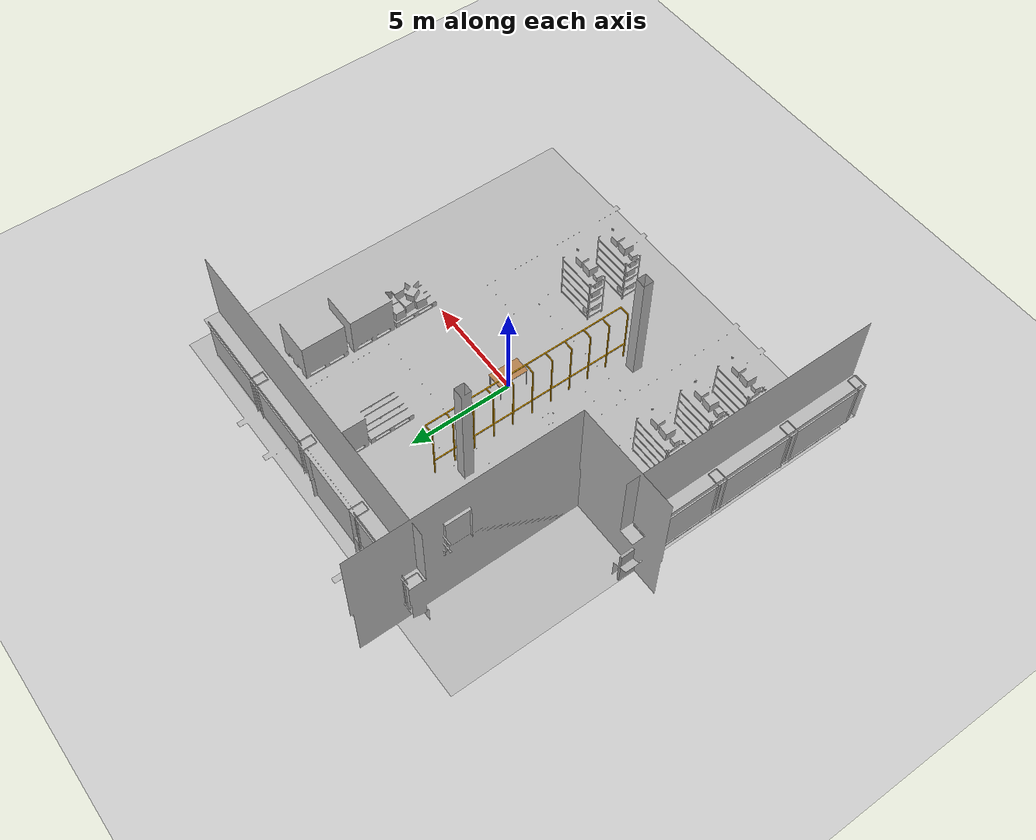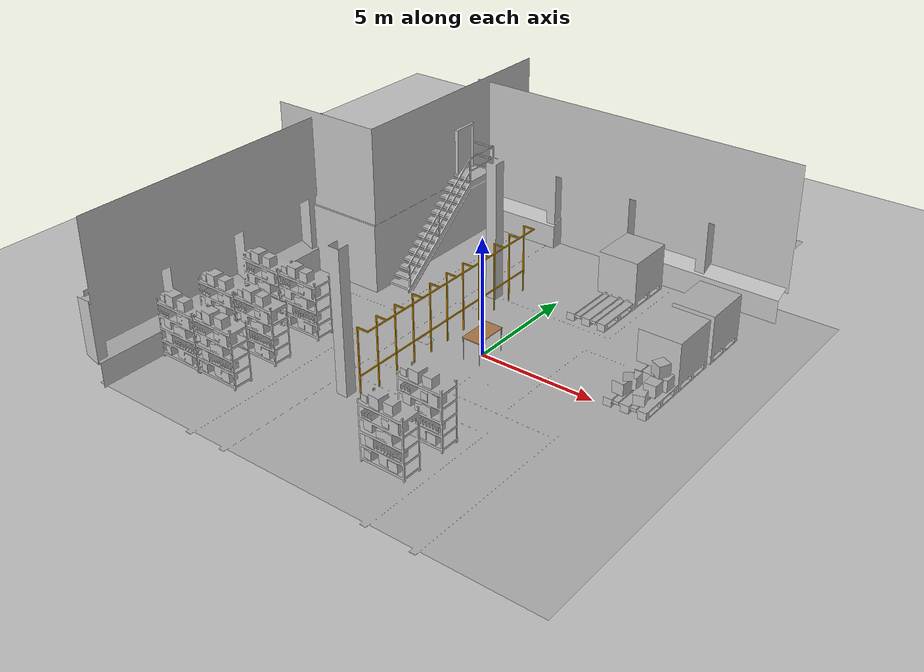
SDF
<?xml version="1.0" ?>
<sdf version="1.6">
  <world name="factory">
    <include>
      <uri>model://ground_plane</uri>
    </include>

    <include>
      <uri>model://sun</uri>
    </include>

    <include>
      <uri>model://workcell</uri>
      <name>workcell</name>
      <pose>0.0 0 -0.0 0 0 -1.5707</pose>
    </include>

    <include>
      <uri>model://table</uri>
      <name>table</name>
      <pose>0.0 0 -0.0 0 0 -1.5707</pose>
    </include>

    <model name="cam">
      <static>true</static>
      <pose>0 0 2.0 0 1.5707 0</pose>
      <link name="cam_link">
        <inertial><mass>1.0</mass></inertial>
        <sensor name="camera" type="camera">
          <always_on>true</always_on>
          <update_rate>30</update_rate>
          <visualize>true</visualize>
          <camera>
            <horizontal_fov>1.047</horizontal_fov>
            <image>
              <width>640</width>
              <height>480</height>
              <format>R8G8B8</format>
            </image>
            <clip><near>0.1</near><far>100</far></clip>
          </camera>
          <plugin name="gazebo_ros_camera" filename="libgazebo_ros_camera.so">
            <frame_name>camera_link</frame_name>
            <camera_name>camera</camera_name>
            <image_topic_name>image_raw</image_topic_name>
          </plugin>
        </sensor>
      </link>
    </model>

  </world>
</sdf>

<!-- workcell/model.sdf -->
<sdf version="1.6">
  <model name="workcell">
    <static>true</static>
    <link name="link">
      <visual name="visual">
        <geometry>
          <mesh>
            <uri>model://workcell/meshes/mesh.dae</uri>
          </mesh>
        </geometry>
      </visual>

      <collision name="floor">
        <pose>0 0 -0.1 0 0 0</pose>
        <geometry>
          <box>
            <size>20.1026 20.1026 0.2</size>
          </box>
        </geometry>

          <surface>
          <contact>
            <ode>
              <max_vel>0.0</max_vel>
              <min_depth>0.001</min_depth>
            </ode>
          </contact>
          </surface>
      </collision>

      <collision name="wall1">
        <pose>4.13686 -10.02116 3.48855 0 0 0</pose>
        <geometry>
          <box>
            <size>12.07683 0.72902 6.97771</size>
          </box>
        </geometry>
      </collision>

      <collision name="wall2">
        <pose>-6.58151 -8.924 3.48855 0 0 0</pose>
        <geometry>
          <box>
            <size>10.59206 5.00198 6.97771</size>
          </box>
        </geometry>
      </collision>

      <collision name="wall3">
        <pose>-9.25721 0.6135 3.48855 0 0 0</pose>
        <geometry>
          <box>
            <size>0.72902 15.29079 6.97771</size>
          </box>
        </geometry>
      </collision>

      <collision name="rack1">
        <pose>7.35056 1.74430 1.41643054 0 0 0</pose>
        <geometry>
          <box>
            <size>0.84444041 1.95580823 2.83286108</size>
          </box>
        </geometry>
      </collision>

      <collision name="rack2">
        <pose>5.36795 1.74430 1.41643054 0 0 0</pose>
        <geometry>
          <box>
            <size>0.84444041 1.95580823 2.83286108</size>
          </box>
        </geometry>
      </collision>

      <collision name="rack3">
        <pose>7.00142 -7.64670 1.41643054 0 0 0</pose>
        <geometry>
          <box>
            <size>0.84444041 3.91161646 2.83286108</size>
          </box>
        </geometry>
      </collision>

      <collision name="rack4">
        <pose>4.97338 -7.64670 1.41643054 0 0 0</pose>
        <geometry>
          <box>
            <size>0.84444041 3.91161646 2.83286108</size>
          </box>
        </geometry>
      </collision>

      <collision name="rack5">
        <pose>2.66949 -7.64670 1.41643054 0 0 0</pose>
        <geometry>
          <box>
            <size>0.84444041 3.91161646 2.83286108</size>
          </box>
        </geometry>
      </collision>

      <collision name="large_pallet1">
        <pose>-3.33609 6.31883 1.04257 0 0 0</pose>
        <geometry>
          <box>
            <size>2.14726 1.79349 2.08514</size>
          </box>
        </geometry>
      </collision>

      <collision name="large_pallet2">
        <pose>-5.74492 6.31883 1.04257 0 0 0</pose>
        <geometry>
          <box>
            <size>2.14726 1.79349 2.08514</size>
          </box>
        </geometry>
      </collision>

      <collision name="large_pallet3">
        <pose>-7.55868 1.91644 1.04257 0 0 0</pose>
        <geometry>
          <box>
            <size>2.14726 1.79432 2.08514</size>
          </box>
        </geometry>
      </collision>

      <collision name="empty_pallet1">
        <pose>-5.29667 1.91644 0.1636 0 0 0</pose>
        <geometry>
          <box>
            <size>2.14726 1.79349 0.32720</size>
          </box>
        </geometry>
      </collision>

      <collision name="box_pallet1">
        <pose>-1.09806 6.31883 0.61958 0 0 0</pose>
        <geometry>
          <box>
            <size>2.14726 1.79349 1.23916</size>
          </box>
        </geometry>
      </collision>

      <collision name="pole1">
        <pose>5.02174 -2.39478 3.022075 0 0 0</pose>
        <geometry>
          <box>
            <size>0.49161 0.49161 6.04415</size>
          </box>
        </geometry>
      </collision>

      <collision name="pole2">
        <pose>0.47071 -2.39478 3.022075 0 0 0</pose>
        <geometry>
          <box>
            <size>0.49161 0.49161 6.04415</size>
          </box>
        </geometry>
      </collision>

      <collision name="pole3">
        <pose>-3.93786 -2.39478 3.022075 0 0 0</pose>
        <geometry>
          <box>
            <size>0.49161 0.49161 6.04415</size>
          </box>
        </geometry>
      </collision>
      <collision name="control_panel">
        <pose>2.07015 1.16224 0.561315 0 0 0</pose>
        <geometry>
          <box>
            <size>0.86733 0.6001 1.12263</size>
          </box>
        </geometry>
      </collision>

      <visual name="conveyor_frame_1">
        <pose>0 -1.21 3 0 0 0</pose>
        <geometry>
          <box>
            <size>10.0 0.05 0.05</size>
          </box>
        </geometry>
        <material>
          <ambient>0.725490196 0.517647059 0 1</ambient>
          <diffuse>0.725490196 0.517647059 0 1</diffuse>
        </material>
      </visual>
      <collision name="conveyor_frame_1_collision">
        <pose>0 -1.21 3 0 0 0</pose>
        <geometry>
          <box>
            <size>10.0 0.05 0.05</size>
          </box>
        </geometry>
      </collision>

      <visual name="conveyor_frame_2">
        <pose>0 -1.7 .95 0 0 0</pose>
        <geometry>
          <box>
            <size>10.0 0.05 0.05</size>
          </box>
        </geometry>
        <material>
          <ambient>0.725490196 0.517647059 0 1</ambient>
          <diffuse>0.725490196 0.517647059 0 1</diffuse>
        </material>
      </visual>
      <collision name="conveyor_frame_2_collision">
        <pose>0 -1.7 .95 0 0 0</pose>
        <geometry>
          <box>
            <size>10.0 0.05 0.05</size>
          </box>
        </geometry>
      </collision>

      <visual name="conveyor_frame_3">
        <pose>5 -1.7 1.5 0 0 0</pose>
        <geometry>
          <box>
            <size>0.05 0.05 3.0</size>
          </box>
        </geometry>
        <material>
          <ambient>0.725490196 0.517647059 0 1</ambient>
          <diffuse>0.725490196 0.517647059 0 1</diffuse>
        </material>
      </visual>
      <collision name="conveyor_frame_3_collision">
        <pose>5 -1.7 1.5 0 0 0</pose>
        <geometry>
          <box>
            <size>0.05 0.05 3.0</size>
          </box>
        </geometry>
      </collision>
      <visual name="conveyor_frame_4">
        <pose>5 -1.455 3.0 0 0 0</pose>
        <geometry>
          <box>
            <size>0.05 0.54 .05</size>
          </box>
        </geometry>
        <material>
          <ambient>0.725490196 0.517647059 0 1</ambient>
          <diffuse>0.725490196 0.517647059 0 1</diffuse>
        </material>
      </visual>
      <collision name="conveyor_frame_3_collision">
        <pose>5 -1.455 3.0 0 0 0</pose>
        <geometry>
          <box>
            <size>0.05 0.54 .05</size>
          </box>
        </geometry>
      </collision>

      <visual name="conveyor_frame_5">
        <pose>4 -1.7 1.5 0 0 0</pose>
        <geometry>
          <box>
            <size>0.05 0.05 3.0</size>
          </box>
        </geometry>
        <material>
          <ambient>0.725490196 0.517647059 0 1</ambient>
          <diffuse>0.725490196 0.517647059 0 1</diffuse>
        </material>
      </visual>
      <collision name="conveyor_frame_5_collision">
        <pose>4 -1.7 1.5 0 0 0</pose>
        <geometry>
          <box>
            <size>0.05 0.05 3.0</size>
          </box>
        </geometry>
      </collision>
      <visual name="conveyor_frame_6">
        <pose>4 -1.455 3.0 0 0 0</pose>
        <geometry>
          <box>
            <size>0.05 0.54 .05</size>
          </box>
        </geometry>
        <material>
          <ambient>0.725490196 0.517647059 0 1</ambient>
          <diffuse>0.725490196 0.517647059 0 1</diffuse>
        </material>
      </visual>
      <collision name="conveyor_frame_6_collision">
        <pose>4 -1.455 3.0 0 0 0</pose>
        <geometry>
          <box>
            <size>0.05 0.54 .05</size>
          </box>
        </geometry>
      </collision>

      <visual name="conveyor_frame_7">
        <pose>3 -1.7 1.5 0 0 0</pose>
        <geometry>
          <box>
            <size>0.05 0.05 3.0</size>
          </box>
        </geometry>
        <material>
          <ambient>0.725490196 0.517647059 0 1</ambient>
          <diffuse>0.725490196 0.517647059 0 1</diffuse>
        </material>
      </visual>
      <collision name="conveyor_frame_7_collision">
        <pose>3 -1.7 1.5 0 0 0</pose>
        <geometry>
          <box>
            <size>0.05 0.05 3.0</size>
          </box>
        </geometry>
      </collision>
      <visual name="conveyor_frame_8">
        <pose>3 -1.455 3.0 0 0 0</pose>
        <geometry>
          <box>
            <size>0.05 0.54 .05</size>
          </box>
        </geometry>
        <material>
          <ambient>0.725490196 0.517647059 0 1</ambient>
          <diffuse>0.725490196 0.517647059 0 1</diffuse>
        </material>
      </visual>
      <collision name="conveyor_frame_8_collision">
        <pose>3 -1.455 3.0 0 0 0</pose>
        <geometry>
          <box>
            <size>0.05 0.54 .05</size>
          </box>
        </geometry>
      </collision>

      <visual name="conveyor_frame_9">
        <pose>2 -1.7 1.5 0 0 0</pose>
        <geometry>
          <box>
            <size>0.05 0.05 3.0</size>
          </box>
        </geometry>
        <material>
          <ambient>0.725490196 0.517647059 0 1</ambient>
          <diffuse>0.725490196 0.517647059 0 1</diffuse>
        </material>
      </visual>
      <collision name="conveyor_frame_9_collision">
        <pose>2 -1.7 1.5 0 0 0</pose>
        <geometry>
          <box>
            <size>0.05 0.05 3.0</size>
          </box>
        </geometry>
      </collision>
      <visual name="conveyor_frame_10">
        <pose>2 -1.455 3.0 0 0 0</pose>
        <geometry>
          <box>
            <size>0.05 0.54 .05</size>
          </box>
        </geometry>
        <material>
          <ambient>0.725490196 0.517647059 0 1</ambient>
          <diffuse>0.725490196 0.517647059 0 1</diffuse>
        </material>
      </visual>
      <collision name="conveyor_frame_10_collision">
        <pose>2 -1.455 3.0 0 0 0</pose>
        <geometry>
          <box>
            <size>0.05 0.54 .05</size>
          </box>
        </geometry>
      </collision>

      <visual name="conveyor_frame_11">
        <pose>1 -1.7 1.5 0 0 0</pose>
        <geometry>
          <box>
            <size>0.05 0.05 3.0</size>
          </box>
        </geometry>
        <material>
          <ambient>0.725490196 0.517647059 0 1</ambient>
          <diffuse>0.725490196 0.517647059 0 1</diffuse>
        </material>
      </visual>
      <collision name="conveyor_frame_11_collision">
        <pose>1 -1.7 1.5 0 0 0</pose>
        <geometry>
          <box>
            <size>0.05 0.05 3.0</size>
          </box>
        </geometry>
      </collision>
      <visual name="conveyor_frame_12">
        <pose>1 -1.455 3.0 0 0 0</pose>
        <geometry>
          <box>
            <size>0.05 0.54 .05</size>
          </box>
        </geometry>
        <material>
          <ambient>0.725490196 0.517647059 0 1</ambient>
          <diffuse>0.725490196 0.517647059 0 1</diffuse>
        </material>
      </visual>
      <collision name="conveyor_frame_12_collision">
        <pose>1 -1.455 3.0 0 0 0</pose>
        <geometry>
          <box>
            <size>0.05 0.54 .05</size>
          </box>
        </geometry>
      </collision>

      <visual name="conveyor_frame_13">
        <pose>0 -1.7 1.5 0 0 0</pose>
        <geometry>
          <box>
            <size>0.05 0.05 3.0</size>
          </box>
        </geometry>
        <material>
          <ambient>0.725490196 0.517647059 0 1</ambient>
          <diffuse>0.725490196 0.517647059 0 1</diffuse>
        </material>
      </visual>
      <collision name="conveyor_frame_13_collision">
        <pose>0 -1.7 1.5 0 0 0</pose>
        <geometry>
          <box>
            <size>0.05 0.05 3.0</size>
          </box>
        </geometry>
      </collision>
      <visual name="conveyor_frame_14">
        <pose>0 -1.455 3.0 0 0 0</pose>
        <geometry>
          <box>
            <size>0.05 0.54 .05</size>
          </box>
        </geometry>
        <material>
          <ambient>0.725490196 0.517647059 0 1</ambient>
          <diffuse>0.725490196 0.517647059 0 1</diffuse>
        </material>
      </visual>
      <collision name="conveyor_frame_14_collision">
        <pose>0 -1.455 3.0 0 0 0</pose>
        <geometry>
          <box>
            <size>0.05 0.54 .05</size>
          </box>
        </geometry>
      </collision>

      <visual name="conveyor_frame_15">
        <pose>-1 -1.7 1.5 0 0 0</pose>
        <geometry>
          <box>
            <size>0.05 0.05 3.0</size>
          </box>
        </geometry>
        <material>
          <ambient>0.725490196 0.517647059 0 1</ambient>
          <diffuse>0.725490196 0.517647059 0 1</diffuse>
        </material>
      </visual>
      <collision name="conveyor_frame_15_collision">
        <pose>-1 -1.7 1.5 0 0 0</pose>
        <geometry>
          <box>
            <size>0.05 0.05 3.0</size>
          </box>
        </geometry>
      </collision>
      <visual name="conveyor_frame_16">
        <pose>-1 -1.455 3.0 0 0 0</pose>
        <geometry>
          <box>
            <size>0.05 0.54 .05</size>
          </box>
        </geometry>
        <material>
          <ambient>0.725490196 0.517647059 0 1</ambient>
          <diffuse>0.725490196 0.517647059 0 1</diffuse>
        </material>
      </visual>
      <collision name="conveyor_frame_16_collision">
        <pose>-1 -1.455 3.0 0 0 0</pose>
        <geometry>
          <box>
            <size>0.05 0.54 .05</size>
          </box>
        </geometry>
      </collision>

      <visual name="conveyor_frame_17">
        <pose>-2 -1.7 1.5 0 0 0</pose>
        <geometry>
          <box>
            <size>0.05 0.05 3.0</size>
          </box>
        </geometry>
        <material>
          <ambient>0.725490196 0.517647059 0 1</ambient>
          <diffuse>0.725490196 0.517647059 0 1</diffuse>
        </material>
      </visual>
      <collision name="conveyor_frame_17_collision">
        <pose>-2 -1.7 1.5 0 0 0</pose>
        <geometry>
          <box>
            <size>0.05 0.05 3.0</size>
          </box>
        </geometry>
      </collision>
      <visual name="conveyor_frame_18">
        <pose>-2 -1.455 3.0 0 0 0</pose>
        <geometry>
          <box>
            <size>0.05 0.54 .05</size>
          </box>
        </geometry>
        <material>
          <ambient>0.725490196 0.517647059 0 1</ambient>
          <diffuse>0.725490196 0.517647059 0 1</diffuse>
        </material>
      </visual>
      <collision name="conveyor_frame_18_collision">
        <pose>-2 -1.455 3.0 0 0 0</pose>
        <geometry>
          <box>
            <size>0.05 0.54 .05</size>
          </box>
        </geometry>
      </collision>

      <visual name="conveyor_frame_19">
        <pose>-3 -1.7 1.5 0 0 0</pose>
        <geometry>
          <box>
            <size>0.05 0.05 3.0</size>
          </box>
        </geometry>
        <material>
          <ambient>0.725490196 0.517647059 0 1</ambient>
          <diffuse>0.725490196 0.517647059 0 1</diffuse>
        </material>
      </visual>
      <collision name="conveyor_frame_19_collision">
        <pose>-3 -1.7 1.5 0 0 0</pose>
        <geometry>
          <box>
            <size>0.05 0.05 3.0</size>
          </box>
        </geometry>
      </collision>
      <visual name="conveyor_frame_20">
        <pose>-3 -1.455 3.0 0 0 0</pose>
        <geometry>
          <box>
            <size>0.05 0.54 .05</size>
          </box>
        </geometry>
        <material>
          <ambient>0.725490196 0.517647059 0 1</ambient>
          <diffuse>0.725490196 0.517647059 0 1</diffuse>
        </material>
      </visual>
      <collision name="conveyor_frame_20_collision">
        <pose>-3 -1.455 3.0 0 0 0</pose>
        <geometry>
          <box>
            <size>0.05 0.54 .05</size>
          </box>
        </geometry>
      </collision>

      <visual name="conveyor_frame_21">
        <pose>-4 -1.7 1.5 0 0 0</pose>
        <geometry>
          <box>
            <size>0.05 0.05 3.0</size>
          </box>
        </geometry>
        <material>
          <ambient>0.725490196 0.517647059 0 1</ambient>
          <diffuse>0.725490196 0.517647059 0 1</diffuse>
        </material>
      </visual>
      <collision name="conveyor_frame_21_collision">
        <pose>-4 -1.7 1.5 0 0 0</pose>
        <geometry>
          <box>
            <size>0.05 0.05 3.0</size>
          </box>
        </geometry>
      </collision>
      <visual name="conveyor_frame_22">
        <pose>-4 -1.455 3.0 0 0 0</pose>
        <geometry>
          <box>
            <size>0.05 0.54 .05</size>
          </box>
        </geometry>
        <material>
          <ambient>0.725490196 0.517647059 0 1</ambient>
          <diffuse>0.725490196 0.517647059 0 1</diffuse>
        </material>
      </visual>
      <collision name="conveyor_frame_22_collision">
        <pose>-4 -1.455 3.0 0 0 0</pose>
        <geometry>
          <box>
            <size>0.05 0.54 .05</size>
          </box>
        </geometry>
      </collision>

      <visual name="conveyor_frame_23">
        <pose>-5 -1.7 1.5 0 0 0</pose>
        <geometry>
          <box>
            <size>0.05 0.05 3.0</size>
          </box>
        </geometry>
        <material>
          <ambient>0.725490196 0.517647059 0 1</ambient>
          <diffuse>0.725490196 0.517647059 0 1</diffuse>
        </material>
      </visual>
      <collision name="conveyor_frame_23_collision">
        <pose>-5 -1.7 1.5 0 0 0</pose>
        <geometry>
          <box>
            <size>0.05 0.05 3.0</size>
          </box>
        </geometry>
      </collision>
      <visual name="conveyor_frame_24">
        <pose>-5 -1.455 3.0 0 0 0</pose>
        <geometry>
          <box>
            <size>0.05 0.54 .05</size>
          </box>
        </geometry>
        <material>
          <ambient>0.725490196 0.517647059 0 1</ambient>
          <diffuse>0.725490196 0.517647059 0 1</diffuse>
        </material>
      </visual>
      <collision name="conveyor_frame_24_collision">
        <pose>-5 -1.455 3.0 0 0 0</pose>
        <geometry>
          <box>
            <size>0.05 0.54 .05</size>
          </box>
        </geometry>
      </collision>
    </link>

  </model>
</sdf>

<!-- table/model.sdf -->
<sdf version="1.5">
  <model name="table">
    <static>true</static>
    <link name="link">
      <collision name="surface">
        <pose>0 0 1.0 0 0 0</pose>
        <geometry>
          <box>
            <size>1.5 0.8 0.03</size>
          </box>
        </geometry>
        <surface>
          <friction>
            <ode>
              <mu>0.6</mu>
              <mu2>0.6</mu2>
            </ode>
          </friction>
        </surface>
      </collision>
      <visual name="visual1">
        <pose>0 0 1.0 0 0 0</pose>
        <geometry>
          <box>
            <size>1.5 0.8 0.03</size>
          </box>
        </geometry>
        <material>
          <script>
            <uri>model://media/materials/scripts/gazebo.material</uri>
            <name>Gazebo/Wood</name>
          </script>
        </material>
      </visual>
      <collision name="front_left_leg">
        <pose>0.68 0.38 0.5 0 0 0</pose>
        <geometry>
          <cylinder>
            <radius>0.02</radius>
            <length>1.0</length>
          </cylinder>
        </geometry>
      </collision>
      <visual name="front_left_leg">
        <pose>0.68 0.38 0.5 0 0 0</pose>
        <geometry>
          <cylinder>
            <radius>0.02</radius>
            <length>1.0</length>
          </cylinder>
        </geometry>
        <material>
          <script>
            <uri>model://media/materials/scripts/gazebo.material</uri>
            <name>Gazebo/Grey</name>
          </script>
        </material>
      </visual>
      <collision name="front_right_leg">
        <pose>0.68 -0.38 0.5 0 0 0</pose>
        <geometry>
          <cylinder>
            <radius>0.02</radius>
            <length>1.0</length>
          </cylinder>
        </geometry>
      </collision>
      <visual name="front_right_leg">
        <pose>0.68 -0.38 0.5 0 0 0</pose>
        <geometry>
          <cylinder>
            <radius>0.02</radius>
            <length>1.0</length>
          </cylinder>
        </geometry>
        <material>
          <script>
            <uri>model://media/materials/scripts/gazebo.material</uri>
            <name>Gazebo/Grey</name>
          </script>
        </material>
      </visual>
      <collision name="back_right_leg">
        <pose>-0.68 -0.38 0.5 0 0 0</pose>
        <geometry>
          <cylinder>
            <radius>0.02</radius>
            <length>1.0</length>
          </cylinder>
        </geometry>
      </collision>
      <visual name="back_right_leg">
        <pose>-0.68 -0.38 0.5 0 0 0</pose>
        <geometry>
          <cylinder>
            <radius>0.02</radius>
            <length>1.0</length>
          </cylinder>
        </geometry>
        <material>
          <script>
            <uri>model://media/materials/scripts/gazebo.material</uri>
            <name>Gazebo/Grey</name>
          </script>
        </material>
      </visual>
      <collision name="back_left_leg">
        <pose>-0.68 0.38 0.5 0 0 0</pose>
        <geometry>
          <cylinder>
            <radius>0.02</radius>
            <length>1.0</length>
          </cylinder>
        </geometry>
      </collision>
      <visual name="back_left_leg">
        <pose>-0.68 0.38 0.5 0 0 0</pose>
        <geometry>
          <cylinder>
            <radius>0.02</radius>
            <length>1.0</length>
          </cylinder>
        </geometry>
        <material>
          <script>
            <uri>model://media/materials/scripts/gazebo.material</uri>
            <name>Gazebo/Grey</name>
          </script>
        </material>
      </visual>
    </link>
  </model>
</sdf>
